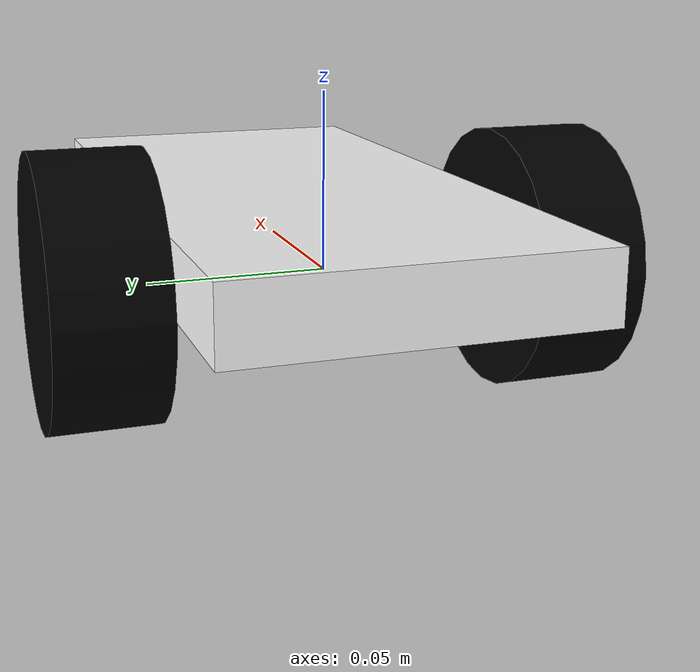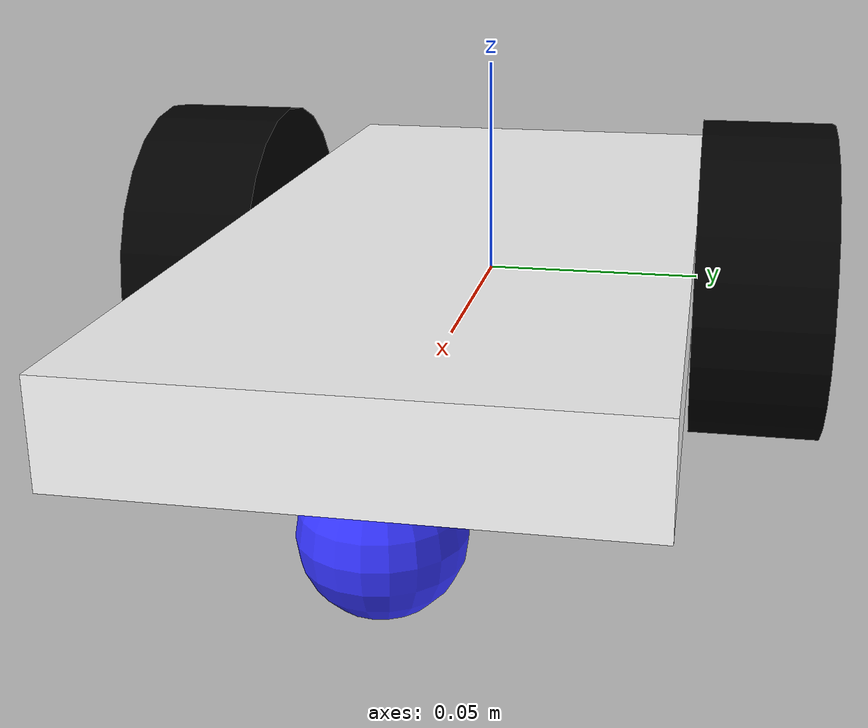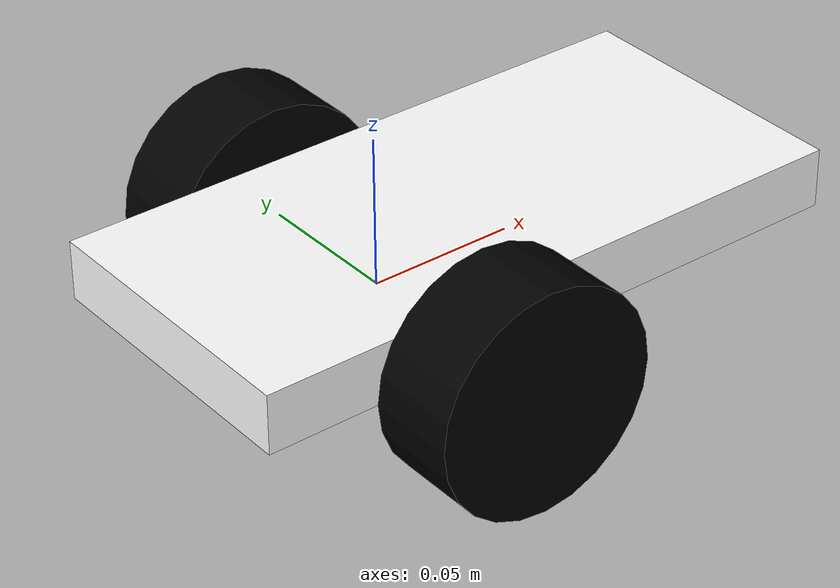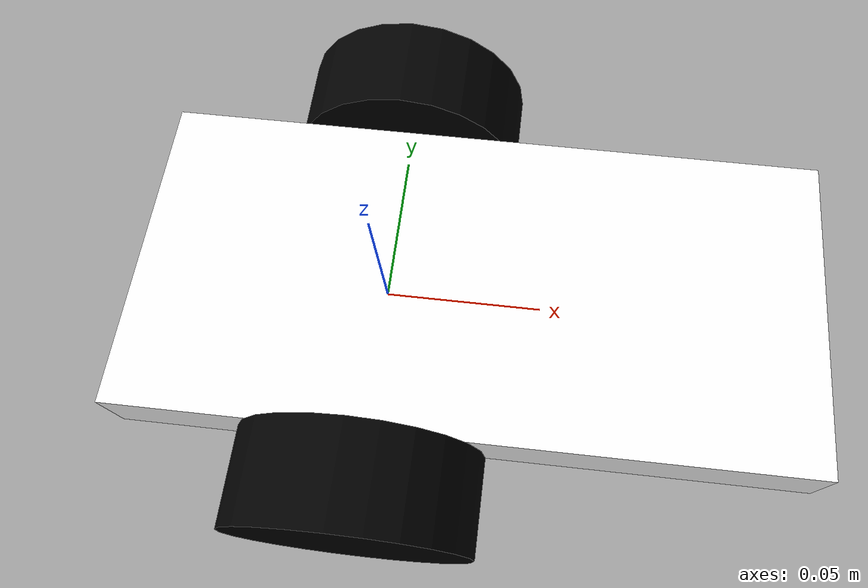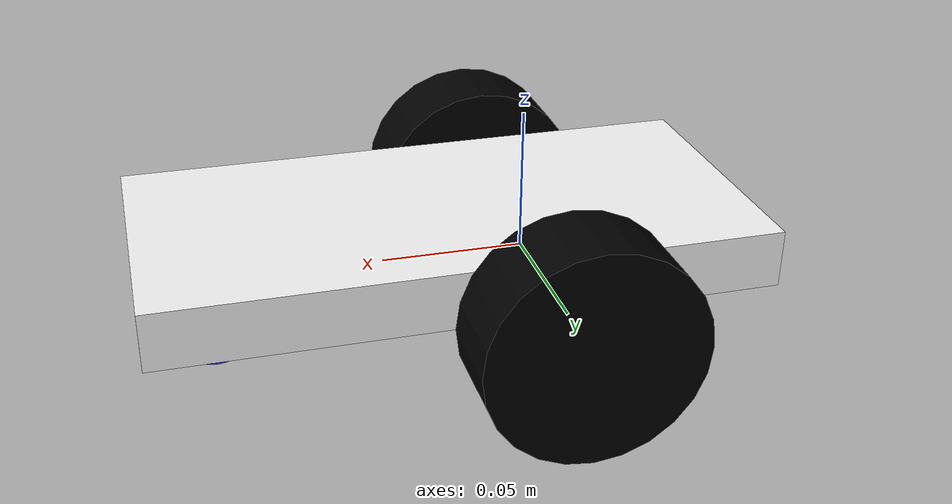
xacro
<?xml version="1.0"?>
<robot xmlns:xacro="http://www.ros.org/wiki/xacro"  name="robot">

    <xacro:include filename="inertial_macros.xacro" />

    <!-- Config the dimensions -->
    <xacro:property name="chassis_length" value="0.21"/>
    <xacro:property name="chassis_width" value="0.1"/>
    <xacro:property name="chassis_height" value="0.02"/>
    <xacro:property name="chassis_mass" value="0.5"/>
    <xacro:property name="wheel_radius" value="0.0375"/>
    <xacro:property name="wheel_thickness" value="0.03"/>
    <xacro:property name="wheel_mass" value="0.1"/>
    <xacro:property name="wheel_offset_x" value="0.075"/>
    <xacro:property name="wheel_offset_y" value="0.065"/>
    <xacro:property name="wheel_offset_z" value="0"/>
    <xacro:property name="caster_wheel_radius" value="0.015"/>
    <xacro:property name="caster_wheel_mass" value="0.1"/>
    <xacro:property name="caster_wheel_offset_x" value="0.185"/>
    <xacro:property name="caster_wheel_offset_z" value="${caster_wheel_radius}"/>

<!-- SETTING MATERIALS -->

    <material name="white">
        <color rgba="1 1 1 1"/>
    </material>

    <material name="orange">
        <color rgba="1 0.3 0.1 1"/>
    </material>

    <material name="blue">
        <color rgba="0.2 0.2 1 1"/>
    </material>

    <material name="black">
        <color rgba="0 0 0 1"/>
    </material>

<!-- BASE LINK -->

    <link name="base_link">
    </link>

<!-- CHASSIS LINK -->

    <joint name="chassis_joint" type="fixed">
        <parent link="base_link"/>
        <child link="chassis"/>
        <origin xyz="${-wheel_offset_x} 0 ${-wheel_offset_z}"/>
    </joint>

    <link name="chassis">
        <visual>
            <origin xyz="${chassis_length/2} 0 ${chassis_height/2}"/>
            <geometry>
                <box size="${chassis_length} ${chassis_width} ${chassis_height}"/>
            </geometry>
            <material name="white"/>
        </visual>
        <collision>
            <origin xyz="${chassis_length/2} 0 ${chassis_height/2}"/>
            <geometry>
                <box size="${chassis_length} ${chassis_width} ${chassis_height}"/>
            </geometry>
        </collision>
        <xacro:inertial_box mass="${chassis_mass    }" x="${chassis_length}" y="${chassis_width}" z="${chassis_height}">
            <origin xyz="${chassis_length/2} 0 ${chassis_height/2}" rpy="0 0 0"/>
        </xacro:inertial_box>
    </link>

<!-- LEFT WHEEL -->

    <joint name="left_wheel_joint" type="continuous">
        <parent link="base_link"/>
        <child link="left_wheel"/>
        <origin xyz="0 ${wheel_offset_y} 0" rpy="-${pi/2} 0 0" />
        <axis xyz="0 0 1"/>
    </joint>

    <link name="left_wheel">
        <visual>
            <geometry>
                <cylinder radius="${wheel_radius}" length="${wheel_thickness}"/>
            </geometry>
            <material name="black"/>
        </visual>
        <collision>
            <geometry>
                <sphere radius="${wheel_radius}"/>
            </geometry>
        </collision>
        <xacro:inertial_cylinder mass="${wheel_mass}" length="${wheel_thickness}" radius="${wheel_radius}">
            <origin xyz="0 0 0" rpy="0 0 0"/>
        </xacro:inertial_cylinder>
    </link>

<!-- RIGHT WHEEL -->

    <joint name="right_wheel_joint" type="continuous">
        <parent link="base_link"/>
        <child link="right_wheel"/>
        <origin xyz="0 ${-wheel_offset_y} 0" rpy="${pi/2} 0 0"/>
        <axis xyz="0 0 -1"/>
    </joint>

    <link name="right_wheel">
        <visual>
            <geometry>
                <cylinder radius="${wheel_radius}" length="${wheel_thickness}"/>
            </geometry>
            <material name="black"/>
        </visual>
        <collision>
            <geometry>
                <sphere radius="${wheel_radius}"/>
            </geometry>
        </collision>
        <xacro:inertial_cylinder mass="${wheel_mass}" length="${wheel_thickness}" radius="${wheel_radius}">
            <origin xyz="0 0 0" rpy="0 0 0"/>
        </xacro:inertial_cylinder>
    </link>

<!-- CASTER WHEEL -->

    <joint name="caster_wheel_joint" type="fixed">
        <parent link="chassis"/>
        <child link="caster_wheel"/>
        <origin xyz="${caster_wheel_offset_x} 0 ${-caster_wheel_offset_z}"/>
    </joint>

    <link name="caster_wheel">
        <visual>
            <geometry>
                <sphere radius="${caster_wheel_radius}"/>
            </geometry>
            <material name="blue"/>
        </visual>
        <collision>
            <geometry>
                <sphere radius="${caster_wheel_radius}"/>
            </geometry>
        </collision>
        <xacro:inertial_sphere mass="${caster_wheel_mass}" radius="${caster_wheel_radius}">
            <origin xyz="0 0 0" rpy="0 0 0"/>
        </xacro:inertial_sphere>
    </link>
    <gazebo reference="caster_wheel">
        <mu1 value="0.001"/>
        <mu2 value="0.001"/>
    </gazebo>

</robot>
